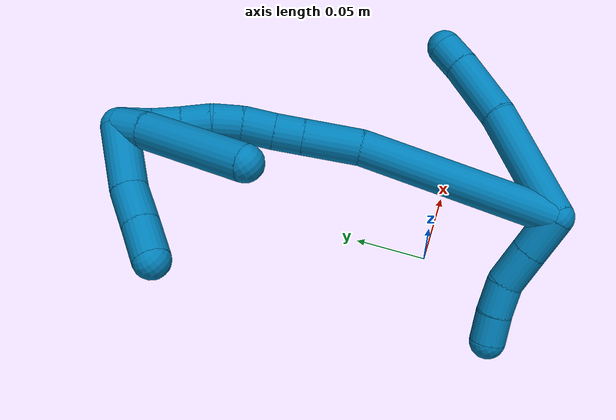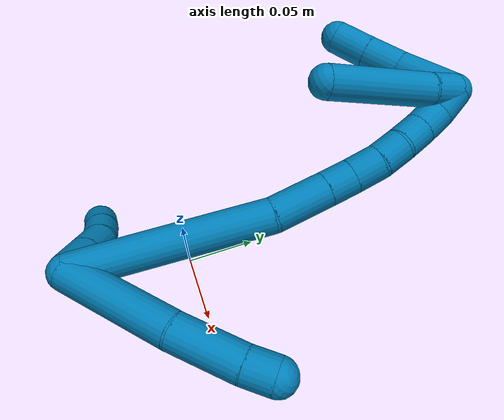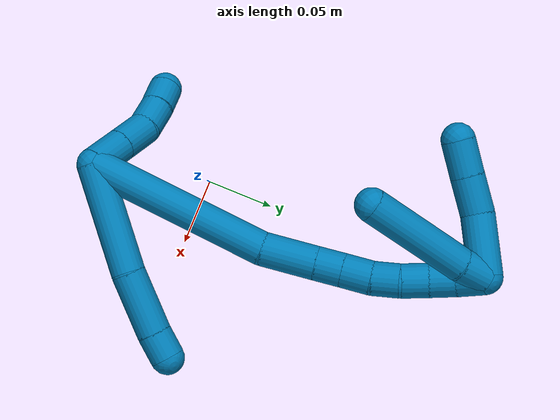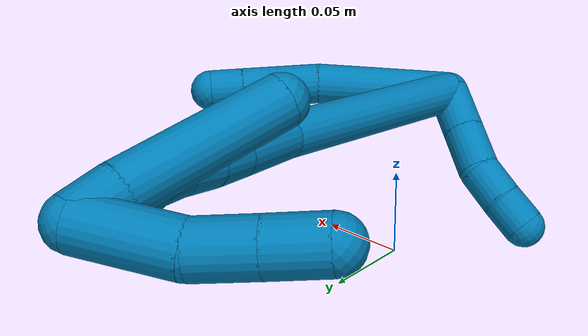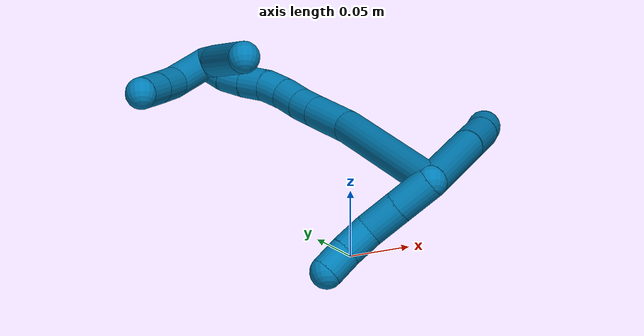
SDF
<sdf version="1.7">
 <world name="default">
  <model name="photoneo_s_sensor">
   <static>1</static>
   <pose>0 0 2 1.57079 1.57079 3.14159</pose>
   <link name="link">
    <inertial><mass>0.1</mass></inertial>
    <sensor name="sensor" type="depth">
     <update_rate>30</update_rate>
     <camera>
      <horizontal_fov>1.22</horizontal_fov>
      <image><width>1920</width><height>1200</height><format>B8G8R8</format></image>
      <clip><near>0.1</near><far>4</far></clip>
      <depth_camera><output>points</output></depth_camera>
     </camera>
     <plugin name="camera_plugin" filename="libgazebo_ros_depth_camera.so">
      <baseline>0.2</baseline>
      <alwaysOn>1</alwaysOn>
      <updateRate>0.0</updateRate>
      <cameraName>camera_ir</cameraName>
      <imageTopicName>/camera/color/image_raw</imageTopicName>
      <cameraInfoTopicName>/camera/color/camera_info</cameraInfoTopicName>
      <depthImageTopicName>/camera/depth/image_raw</depthImageTopicName>
      <depthImageCameraInfoTopicName>/camera/depth/camera_info</depthImageCameraInfoTopicName>
      <pointCloudTopicName>/camera/depth/points</pointCloudTopicName>
      <frameName>fr_optical</frameName>
      <pointCloudCutoff>0.1</pointCloudCutoff>
      <pointCloudCutoffMax>2.0</pointCloudCutoffMax>
      <distortionK1>0</distortionK1>
      <distortionK2>0</distortionK2>
      <distortionK3>0</distortionK3>
      <distortionT1>0</distortionT1>
      <distortionT2>0</distortionT2>
      <CxPrime>0</CxPrime>
      <Cx>0</Cx>
      <Cy>0</Cy>
      <focalLength>0</focalLength>
      <hackBaseline>0</hackBaseline>
     </plugin>
    </sensor>
   </link>
  </model>
  <model name="bin">
   <static>1</static>
   <link name="bottom">
    <collision name="collision-bottom">
     <pose>0 0 -0.01 0 -0 0</pose>
     <geometry><box><size>0.8 0.6 0.02</size></box></geometry>
     <surface>
      <friction><ode><mu>100</mu><mu2>100</mu2></ode></friction>
      <contact><collide_bitmask>65535</collide_bitmask></contact>
     </surface>
    </collision>
   </link>
   <link name="west_wall">
    <collision name="collision-west_wall">
     <pose>-0.41 0 0.1 0 -0 0</pose>
     <geometry><box><size>0.02 0.6 0.2</size></box></geometry>
     <surface>
      <friction><ode><mu>100</mu><mu2>100</mu2></ode></friction>
      <contact><collide_bitmask>65535</collide_bitmask></contact>
     </surface>
    </collision>
   </link>
   <link name="east_wall">
    <collision name="collision-east_wall">
     <pose>0.41 0 0.1 0 -0 0</pose>
     <geometry><box><size>0.02 0.6 0.2</size></box></geometry>
     <surface>
      <friction><ode><mu>100</mu><mu2>100</mu2></ode></friction>
      <contact><collide_bitmask>65535</collide_bitmask></contact>
     </surface>
    </collision>
   </link>
   <link name="south_wall">
    <collision name="collision-south_wall">
     <pose>0 -0.31 0.1 0 -0 0</pose>
     <geometry><box><size>0.8 0.02 0.2</size></box></geometry>
     <surface>
      <friction><ode><mu>100</mu><mu2>100</mu2></ode></friction>
      <contact><collide_bitmask>65535</collide_bitmask></contact>
     </surface>
    </collision>
   </link>
   <link name="north_wall">
    <collision name="collision-north_wall">
     <pose>0 0.31 0.1 0 -0 0</pose>
     <geometry><box><size>0.8 0.02 0.2</size></box></geometry>
     <surface>
      <friction><ode><mu>100</mu><mu2>100</mu2></ode></friction>
      <contact><collide_bitmask>65535</collide_bitmask></contact>
     </surface>
    </collision>
   </link>
  </model>
  <model name="9">
   <static>0</static>
   <link name="9">
    <collision name="collision-cylinder-e_1_2_8">
     <pose>0.031785 0.004801 0.026002 -0.182579 0.876914 -0.085797</pose>
     <geometry><cylinder><radius>0.0125</radius><length>0.082692</length></cylinder></geometry>
     <surface>
      <friction><ode><mu>1.16</mu><mu2>1.16</mu2><slip1>0</slip1><slip2>0</slip2></ode></friction>
      <contact><ode><kp>1e+06</kp><kd>1</kd><max_vel>0</max_vel><min_depth>0.001</min_depth></ode></contact>
     </surface>
    </collision>
    <visual name="visual-cylinder-e_1_2_8">
     <pose>0.031785 0.004801 0.026002 -0.182579 0.876914 -0.085797</pose>
     <geometry><cylinder><radius>0.0125</radius><length>0.082692</length></cylinder></geometry>
     <material><ambient>0 0.490196 0.709804 1</ambient></material>
    </visual>
    <collision name="collision-cylinder-e_2_8_9">
     <pose>0.082028 0.015281 0.065546 -0.397094 0.898762 -0.193466</pose>
     <geometry><cylinder><radius>0.0125</radius><length>0.047172</length></cylinder></geometry>
     <surface>
      <friction><ode><mu>1.16</mu><mu2>1.16</mu2><slip1>0</slip1><slip2>0</slip2></ode></friction>
      <contact><ode><kp>1e+06</kp><kd>1</kd><max_vel>0</max_vel><min_depth>0.001</min_depth></ode></contact>
     </surface>
    </collision>
    <visual name="visual-cylinder-e_2_8_9">
     <pose>0.082028 0.015281 0.065546 -0.397094 0.898762 -0.193466</pose>
     <geometry><cylinder><radius>0.0125</radius><length>0.047172</length></cylinder></geometry>
     <material><ambient>0 0.490196 0.709804 1</ambient></material>
    </visual>
    <collision name="collision-cylinder-e_3_9_6">
     <pose>0.107824 0.024051 0.085249 -0.464935 0.816619 -0.204133</pose>
     <geometry><cylinder><radius>0.0125</radius><length>0.020136</length></cylinder></geometry>
     <surface>
      <friction><ode><mu>1.16</mu><mu2>1.16</mu2><slip1>0</slip1><slip2>0</slip2></ode></friction>
      <contact><ode><kp>1e+06</kp><kd>1</kd><max_vel>0</max_vel><min_depth>0.001</min_depth></ode></contact>
     </surface>
    </collision>
    <visual name="visual-cylinder-e_3_9_6">
     <pose>0.107824 0.024051 0.085249 -0.464935 0.816619 -0.204133</pose>
     <geometry><cylinder><radius>0.0125</radius><length>0.020136</length></cylinder></geometry>
     <material><ambient>0 0.490196 0.709804 1</ambient></material>
    </visual>
    <collision name="collision-cylinder-e_1_2_10">
     <pose>-0.002984 0.012877 -0.006392 -2.03156 -0.204636 0.328219</pose>
     <geometry><cylinder><radius>0.0125</radius><length>0.029366</length></cylinder></geometry>
     <surface>
      <friction><ode><mu>1.16</mu><mu2>1.16</mu2><slip1>0</slip1><slip2>0</slip2></ode></friction>
      <contact><ode><kp>1e+06</kp><kd>1</kd><max_vel>0</max_vel><min_depth>0.001</min_depth></ode></contact>
     </surface>
    </collision>
    <visual name="visual-cylinder-e_1_2_10">
     <pose>-0.002984 0.012877 -0.006392 -2.03156 -0.204636 0.328219</pose>
     <geometry><cylinder><radius>0.0125</radius><length>0.029366</length></cylinder></geometry>
     <material><ambient>0 0.490196 0.709804 1</ambient></material>
    </visual>
    <collision name="collision-cylinder-e_2_10_11">
     <pose>-0.008758 0.037802 -0.018825 -2.03555 -0.204197 0.328961</pose>
     <geometry><cylinder><radius>0.0125</radius><length>0.027525</length></cylinder></geometry>
     <surface>
      <friction><ode><mu>1.16</mu><mu2>1.16</mu2><slip1>0</slip1><slip2>0</slip2></ode></friction>
      <contact><ode><kp>1e+06</kp><kd>1</kd><max_vel>0</max_vel><min_depth>0.001</min_depth></ode></contact>
     </surface>
    </collision>
    <visual name="visual-cylinder-e_2_10_11">
     <pose>-0.008758 0.037802 -0.018825 -2.03555 -0.204197 0.328961</pose>
     <geometry><cylinder><radius>0.0125</radius><length>0.027525</length></cylinder></geometry>
     <material><ambient>0 0.490196 0.709804 1</ambient></material>
    </visual>
    <collision name="collision-cylinder-e_3_11_12">
     <pose>-0.015845 0.057714 -0.031806 -2.29392 -0.388723 0.822789</pose>
     <geometry><cylinder><radius>0.0125</radius><length>0.02267</length></cylinder></geometry>
     <surface>
      <friction><ode><mu>1.16</mu><mu2>1.16</mu2><slip1>0</slip1><slip2>0</slip2></ode></friction>
      <contact><ode><kp>1e+06</kp><kd>1</kd><max_vel>0</max_vel><min_depth>0.001</min_depth></ode></contact>
     </surface>
    </collision>
    <visual name="visual-cylinder-e_3_11_12">
     <pose>-0.015845 0.057714 -0.031806 -2.29392 -0.388723 0.822789</pose>
     <geometry><cylinder><radius>0.0125</radius><length>0.02267</length></cylinder></geometry>
     <material><ambient>0 0.490196 0.709804 1</ambient></material>
    </visual>
    <collision name="collision-cylinder-e_4_12_5">
     <pose>-0.024001 0.071932 -0.045759 -2.40533 -0.387315 0.940767</pose>
     <geometry><cylinder><radius>0.0125</radius><length>0.020439</length></cylinder></geometry>
     <surface>
      <friction><ode><mu>1.16</mu><mu2>1.16</mu2><slip1>0</slip1><slip2>0</slip2></ode></friction>
      <contact><ode><kp>1e+06</kp><kd>1</kd><max_vel>0</max_vel><min_depth>0.001</min_depth></ode></contact>
     </surface>
    </collision>
    <visual name="visual-cylinder-e_4_12_5">
     <pose>-0.024001 0.071932 -0.045759 -2.40533 -0.387315 0.940767</pose>
     <geometry><cylinder><radius>0.0125</radius><length>0.020439</length></cylinder></geometry>
     <material><ambient>0 0.490196 0.709804 1</ambient></material>
    </visual>
    <collision name="collision-cylinder-e_1_2_13">
     <pose>0.018282 0.047949 0.045072 -0.81632 0.270981 -0.117771</pose>
     <geometry><cylinder><radius>0.0125</radius><length>0.136599</length></cylinder></geometry>
     <surface>
      <friction><ode><mu>1.16</mu><mu2>1.16</mu2><slip1>0</slip1><slip2>0</slip2></ode></friction>
      <contact><ode><kp>1e+06</kp><kd>1</kd><max_vel>0</max_vel><min_depth>0.001</min_depth></ode></contact>
     </surface>
    </collision>
    <visual name="visual-cylinder-e_1_2_13">
     <pose>0.018282 0.047949 0.045072 -0.81632 0.270981 -0.117771</pose>
     <geometry><cylinder><radius>0.0125</radius><length>0.136599</length></cylinder></geometry>
     <material><ambient>0 0.490196 0.709804 1</ambient></material>
    </visual>
    <collision name="collision-cylinder-e_2_13_14">
     <pose>0.038218 0.111379 0.102671 -0.890449 0.082865 -0.039559</pose>
     <geometry><cylinder><radius>0.0125</radius><length>0.039967</length></cylinder></geometry>
     <surface>
      <friction><ode><mu>1.16</mu><mu2>1.16</mu2><slip1>0</slip1><slip2>0</slip2></ode></friction>
      <contact><ode><kp>1e+06</kp><kd>1</kd><max_vel>0</max_vel><min_depth>0.001</min_depth></ode></contact>
     </surface>
    </collision>
    <visual name="visual-cylinder-e_2_13_14">
     <pose>0.038218 0.111379 0.102671 -0.890449 0.082865 -0.039559</pose>
     <geometry><cylinder><radius>0.0125</radius><length>0.039967</length></cylinder></geometry>
     <material><ambient>0 0.490196 0.709804 1</ambient></material>
    </visual>
    <collision name="collision-cylinder-e_3_14_15">
     <pose>0.040579 0.134588 0.121588 -0.879915 0.070348 -0.033126</pose>
     <geometry><cylinder><radius>0.0125</radius><length>0.020103</length></cylinder></geometry>
     <surface>
      <friction><ode><mu>1.16</mu><mu2>1.16</mu2><slip1>0</slip1><slip2>0</slip2></ode></friction>
      <contact><ode><kp>1e+06</kp><kd>1</kd><max_vel>0</max_vel><min_depth>0.001</min_depth></ode></contact>
     </surface>
    </collision>
    <visual name="visual-cylinder-e_3_14_15">
     <pose>0.040579 0.134588 0.121588 -0.879915 0.070348 -0.033126</pose>
     <geometry><cylinder><radius>0.0125</radius><length>0.020103</length></cylinder></geometry>
     <material><ambient>0 0.490196 0.709804 1</ambient></material>
    </visual>
    <collision name="collision-cylinder-e_4_15_16">
     <pose>0.041735 0.150254 0.13549 -0.812972 0.041101 -0.017694</pose>
     <geometry><cylinder><radius>0.0125</radius><length>0.021878</length></cylinder></geometry>
     <surface>
      <friction><ode><mu>1.16</mu><mu2>1.16</mu2><slip1>0</slip1><slip2>0</slip2></ode></friction>
      <contact><ode><kp>1e+06</kp><kd>1</kd><max_vel>0</max_vel><min_depth>0.001</min_depth></ode></contact>
     </surface>
    </collision>
    <visual name="visual-cylinder-e_4_15_16">
     <pose>0.041735 0.150254 0.13549 -0.812972 0.041101 -0.017694</pose>
     <geometry><cylinder><radius>0.0125</radius><length>0.021878</length></cylinder></geometry>
     <material><ambient>0 0.490196 0.709804 1</ambient></material>
    </visual>
    <collision name="collision-cylinder-e_5_16_17">
     <pose>0.04115 0.166037 0.149177 -0.903916 -0.103309 0.050188</pose>
     <geometry><cylinder><radius>0.0125</radius><length>0.020072</length></cylinder></geometry>
     <surface>
      <friction><ode><mu>1.16</mu><mu2>1.16</mu2><slip1>0</slip1><slip2>0</slip2></ode></friction>
      <contact><ode><kp>1e+06</kp><kd>1</kd><max_vel>0</max_vel><min_depth>0.001</min_depth></ode></contact>
     </surface>
    </collision>
    <visual name="visual-cylinder-e_5_16_17">
     <pose>0.04115 0.166037 0.149177 -0.903916 -0.103309 0.050188</pose>
     <geometry><cylinder><radius>0.0125</radius><length>0.020072</length></cylinder></geometry>
     <material><ambient>0 0.490196 0.709804 1</ambient></material>
    </visual>
    <collision name="collision-cylinder-e_6_17_18">
     <pose>0.038871 0.182817 0.159915 -1.09875 -0.123332 0.075569</pose>
     <geometry><cylinder><radius>0.0125</radius><length>0.020221</length></cylinder></geometry>
     <surface>
      <friction><ode><mu>1.16</mu><mu2>1.16</mu2><slip1>0</slip1><slip2>0</slip2></ode></friction>
      <contact><ode><kp>1e+06</kp><kd>1</kd><max_vel>0</max_vel><min_depth>0.001</min_depth></ode></contact>
     </surface>
    </collision>
    <visual name="visual-cylinder-e_6_17_18">
     <pose>0.038871 0.182817 0.159915 -1.09875 -0.123332 0.075569</pose>
     <geometry><cylinder><radius>0.0125</radius><length>0.020221</length></cylinder></geometry>
     <material><ambient>0 0.490196 0.709804 1</ambient></material>
    </visual>
    <collision name="collision-cylinder-e_7_18_19">
     <pose>0.035752 0.200271 0.169702 -1.0206 -0.185522 0.104051</pose>
     <geometry><cylinder><radius>0.0125</radius><length>0.020334</length></cylinder></geometry>
     <surface>
      <friction><ode><mu>1.16</mu><mu2>1.16</mu2><slip1>0</slip1><slip2>0</slip2></ode></friction>
      <contact><ode><kp>1e+06</kp><kd>1</kd><max_vel>0</max_vel><min_depth>0.001</min_depth></ode></contact>
     </surface>
    </collision>
    <visual name="visual-cylinder-e_7_18_19">
     <pose>0.035752 0.200271 0.169702 -1.0206 -0.185522 0.104051</pose>
     <geometry><cylinder><radius>0.0125</radius><length>0.020334</length></cylinder></geometry>
     <material><ambient>0 0.490196 0.709804 1</ambient></material>
    </visual>
    <collision name="collision-cylinder-e_8_19_1">
     <pose>0.030305 0.215736 0.181812 -0.78986 -0.350045 0.147151</pose>
     <geometry><cylinder><radius>0.0125</radius><length>0.020825</length></cylinder></geometry>
     <surface>
      <friction><ode><mu>1.16</mu><mu2>1.16</mu2><slip1>0</slip1><slip2>0</slip2></ode></friction>
      <contact><ode><kp>1e+06</kp><kd>1</kd><max_vel>0</max_vel><min_depth>0.001</min_depth></ode></contact>
     </surface>
    </collision>
    <visual name="visual-cylinder-e_8_19_1">
     <pose>0.030305 0.215736 0.181812 -0.78986 -0.350045 0.147151</pose>
     <geometry><cylinder><radius>0.0125</radius><length>0.020825</length></cylinder></geometry>
     <material><ambient>0 0.490196 0.709804 1</ambient></material>
    </visual>
    <collision name="collision-cylinder-e_1_1_20">
     <pose>0.008925 0.224938 0.174848 -2.98022 -0.903509 2.81133</pose>
     <geometry><cylinder><radius>0.0125</radius><length>0.045344</length></cylinder></geometry>
     <surface>
      <friction><ode><mu>1.16</mu><mu2>1.16</mu2><slip1>0</slip1><slip2>0</slip2></ode></friction>
      <contact><ode><kp>1e+06</kp><kd>1</kd><max_vel>0</max_vel><min_depth>0.001</min_depth></ode></contact>
     </surface>
    </collision>
    <visual name="visual-cylinder-e_1_1_20">
     <pose>0.008925 0.224938 0.174848 -2.98022 -0.903509 2.81133</pose>
     <geometry><cylinder><radius>0.0125</radius><length>0.045344</length></cylinder></geometry>
     <material><ambient>0 0.490196 0.709804 1</ambient></material>
    </visual>
    <collision name="collision-cylinder-e_2_20_21">
     <pose>-0.020804 0.225279 0.153752 2.8836 -1.00944 -2.68034</pose>
     <geometry><cylinder><radius>0.0125</radius><length>0.028163</length></cylinder></geometry>
     <surface>
      <friction><ode><mu>1.16</mu><mu2>1.16</mu2><slip1>0</slip1><slip2>0</slip2></ode></friction>
      <contact><ode><kp>1e+06</kp><kd>1</kd><max_vel>0</max_vel><min_depth>0.001</min_depth></ode></contact>
     </surface>
    </collision>
    <visual name="visual-cylinder-e_2_20_21">
     <pose>-0.020804 0.225279 0.153752 2.8836 -1.00944 -2.68034</pose>
     <geometry><cylinder><radius>0.0125</radius><length>0.028163</length></cylinder></geometry>
     <material><ambient>0 0.490196 0.709804 1</ambient></material>
    </visual>
    <collision name="collision-cylinder-e_3_21_4">
     <pose>-0.044071 0.221612 0.139898 2.88191 -1.02865 -2.68739</pose>
     <geometry><cylinder><radius>0.0125</radius><length>0.026493</length></cylinder></geometry>
     <surface>
      <friction><ode><mu>1.16</mu><mu2>1.16</mu2><slip1>0</slip1><slip2>0</slip2></ode></friction>
      <contact><ode><kp>1e+06</kp><kd>1</kd><max_vel>0</max_vel><min_depth>0.001</min_depth></ode></contact>
     </surface>
    </collision>
    <visual name="visual-cylinder-e_3_21_4">
     <pose>-0.044071 0.221612 0.139898 2.88191 -1.02865 -2.68739</pose>
     <geometry><cylinder><radius>0.0125</radius><length>0.026493</length></cylinder></geometry>
     <material><ambient>0 0.490196 0.709804 1</ambient></material>
    </visual>
    <collision name="collision-cylinder-e_1_1_22">
     <pose>0.022216 0.213741 0.184786 1.98307 -0.433575 -0.649578</pose>
     <geometry><cylinder><radius>0.0125</radius><length>0.02151</length></cylinder></geometry>
     <surface>
      <friction><ode><mu>1.16</mu><mu2>1.16</mu2><slip1>0</slip1><slip2>0</slip2></ode></friction>
      <contact><ode><kp>1e+06</kp><kd>1</kd><max_vel>0</max_vel><min_depth>0.001</min_depth></ode></contact>
     </surface>
    </collision>
    <visual name="visual-cylinder-e_1_1_22">
     <pose>0.022216 0.213741 0.184786 1.98307 -0.433575 -0.649578</pose>
     <geometry><cylinder><radius>0.0125</radius><length>0.02151</length></cylinder></geometry>
     <material><ambient>0 0.490196 0.709804 1</ambient></material>
    </visual>
    <collision name="collision-cylinder-e_2_22_3">
     <pose>-0.001875 0.175116 0.164263 2.08104 -0.52215 -0.855168</pose>
     <geometry><cylinder><radius>0.0125</radius><length>0.07849</length></cylinder></geometry>
     <surface>
      <friction><ode><mu>1.16</mu><mu2>1.16</mu2><slip1>0</slip1><slip2>0</slip2></ode></friction>
      <contact><ode><kp>1e+06</kp><kd>1</kd><max_vel>0</max_vel><min_depth>0.001</min_depth></ode></contact>
     </surface>
    </collision>
    <visual name="visual-cylinder-e_2_22_3">
     <pose>-0.001875 0.175116 0.164263 2.08104 -0.52215 -0.855168</pose>
     <geometry><cylinder><radius>0.0125</radius><length>0.07849</length></cylinder></geometry>
     <material><ambient>0 0.490196 0.709804 1</ambient></material>
    </visual>
    <collision name="collision-sphere-3">
     <pose>-0.021449 0.145433 0.14765 0 -0 0</pose>
     <geometry><sphere><radius>0.0125</radius></sphere></geometry>
     <surface>
      <friction><ode><mu>1.16</mu><mu2>1.16</mu2><slip1>0</slip1><slip2>0</slip2></ode></friction>
      <contact><ode><kp>1e+06</kp><kd>1</kd><max_vel>0</max_vel><min_depth>0.001</min_depth></ode></contact>
     </surface>
    </collision>
    <visual name="visual-sphere-3">
     <pose>-0.021449 0.145433 0.14765 0 -0 0</pose>
     <geometry><sphere><radius>0.0125</radius></sphere></geometry>
     <material><ambient>0 0.490196 0.709804 1</ambient></material>
    </visual>
    <collision name="collision-sphere-22">
     <pose>0.017698 0.204799 0.180876 0 -0 0</pose>
     <geometry><sphere><radius>0.0125</radius></sphere></geometry>
     <surface>
      <friction><ode><mu>1.16</mu><mu2>1.16</mu2><slip1>0</slip1><slip2>0</slip2></ode></friction>
      <contact><ode><kp>1e+06</kp><kd>1</kd><max_vel>0</max_vel><min_depth>0.001</min_depth></ode></contact>
     </surface>
    </collision>
    <visual name="visual-sphere-22">
     <pose>0.017698 0.204799 0.180876 0 -0 0</pose>
     <geometry><sphere><radius>0.0125</radius></sphere></geometry>
     <material><ambient>0 0.490196 0.709804 1</ambient></material>
    </visual>
    <collision name="collision-sphere-4">
     <pose>-0.055418 0.219857 0.133293 0 -0 0</pose>
     <geometry><sphere><radius>0.0125</radius></sphere></geometry>
     <surface>
      <friction><ode><mu>1.16</mu><mu2>1.16</mu2><slip1>0</slip1><slip2>0</slip2></ode></friction>
      <contact><ode><kp>1e+06</kp><kd>1</kd><max_vel>0</max_vel><min_depth>0.001</min_depth></ode></contact>
     </surface>
    </collision>
    <visual name="visual-sphere-4">
     <pose>-0.055418 0.219857 0.133293 0 -0 0</pose>
     <geometry><sphere><radius>0.0125</radius></sphere></geometry>
     <material><ambient>0 0.490196 0.709804 1</ambient></material>
    </visual>
    <collision name="collision-sphere-21">
     <pose>-0.032724 0.223367 0.146504 0 -0 0</pose>
     <geometry><sphere><radius>0.0125</radius></sphere></geometry>
     <surface>
      <friction><ode><mu>1.16</mu><mu2>1.16</mu2><slip1>0</slip1><slip2>0</slip2></ode></friction>
      <contact><ode><kp>1e+06</kp><kd>1</kd><max_vel>0</max_vel><min_depth>0.001</min_depth></ode></contact>
     </surface>
    </collision>
    <visual name="visual-sphere-21">
     <pose>-0.032724 0.223367 0.146504 0 -0 0</pose>
     <geometry><sphere><radius>0.0125</radius></sphere></geometry>
     <material><ambient>0 0.490196 0.709804 1</ambient></material>
    </visual>
    <collision name="collision-sphere-20">
     <pose>-0.008884 0.227192 0.161 0 -0 0</pose>
     <geometry><sphere><radius>0.0125</radius></sphere></geometry>
     <surface>
      <friction><ode><mu>1.16</mu><mu2>1.16</mu2><slip1>0</slip1><slip2>0</slip2></ode></friction>
      <contact><ode><kp>1e+06</kp><kd>1</kd><max_vel>0</max_vel><min_depth>0.001</min_depth></ode></contact>
     </surface>
    </collision>
    <visual name="visual-sphere-20">
     <pose>-0.008884 0.227192 0.161 0 -0 0</pose>
     <geometry><sphere><radius>0.0125</radius></sphere></geometry>
     <material><ambient>0 0.490196 0.709804 1</ambient></material>
    </visual>
    <collision name="collision-sphere-11">
     <pose>-0.011549 0.049849 -0.024865 0 -0 0</pose>
     <geometry><sphere><radius>0.0125</radius></sphere></geometry>
     <surface>
      <friction><ode><mu>1.16</mu><mu2>1.16</mu2><slip1>0</slip1><slip2>0</slip2></ode></friction>
      <contact><ode><kp>1e+06</kp><kd>1</kd><max_vel>0</max_vel><min_depth>0.001</min_depth></ode></contact>
     </surface>
    </collision>
    <visual name="visual-sphere-11">
     <pose>-0.011549 0.049849 -0.024865 0 -0 0</pose>
     <geometry><sphere><radius>0.0125</radius></sphere></geometry>
     <material><ambient>0 0.490196 0.709804 1</ambient></material>
    </visual>
    <collision name="collision-sphere-10">
     <pose>-0.005967 0.025755 -0.012784 0 -0 0</pose>
     <geometry><sphere><radius>0.0125</radius></sphere></geometry>
     <surface>
      <friction><ode><mu>1.16</mu><mu2>1.16</mu2><slip1>0</slip1><slip2>0</slip2></ode></friction>
      <contact><ode><kp>1e+06</kp><kd>1</kd><max_vel>0</max_vel><min_depth>0.001</min_depth></ode></contact>
     </surface>
    </collision>
    <visual name="visual-sphere-10">
     <pose>-0.005967 0.025755 -0.012784 0 -0 0</pose>
     <geometry><sphere><radius>0.0125</radius></sphere></geometry>
     <material><ambient>0 0.490196 0.709804 1</ambient></material>
    </visual>
    <collision name="collision-sphere-6">
     <pose>0.115162 0.027141 0.091411 0 -0 0</pose>
     <geometry><sphere><radius>0.0125</radius></sphere></geometry>
     <surface>
      <friction><ode><mu>1.16</mu><mu2>1.16</mu2><slip1>0</slip1><slip2>0</slip2></ode></friction>
      <contact><ode><kp>1e+06</kp><kd>1</kd><max_vel>0</max_vel><min_depth>0.001</min_depth></ode></contact>
     </surface>
    </collision>
    <visual name="visual-sphere-6">
     <pose>0.115162 0.027141 0.091411 0 -0 0</pose>
     <geometry><sphere><radius>0.0125</radius></sphere></geometry>
     <material><ambient>0 0.490196 0.709804 1</ambient></material>
    </visual>
    <collision name="collision-sphere-9">
     <pose>0.100486 0.02096 0.079088 0 -0 0</pose>
     <geometry><sphere><radius>0.0125</radius></sphere></geometry>
     <surface>
      <friction><ode><mu>1.16</mu><mu2>1.16</mu2><slip1>0</slip1><slip2>0</slip2></ode></friction>
      <contact><ode><kp>1e+06</kp><kd>1</kd><max_vel>0</max_vel><min_depth>0.001</min_depth></ode></contact>
     </surface>
    </collision>
    <visual name="visual-sphere-9">
     <pose>0.100486 0.02096 0.079088 0 -0 0</pose>
     <geometry><sphere><radius>0.0125</radius></sphere></geometry>
     <material><ambient>0 0.490196 0.709804 1</ambient></material>
    </visual>
    <collision name="collision-sphere-2">
     <geometry><sphere><radius>0.0125</radius></sphere></geometry>
     <surface>
      <friction><ode><mu>1.16</mu><mu2>1.16</mu2><slip1>0</slip1><slip2>0</slip2></ode></friction>
      <contact><ode><kp>1e+06</kp><kd>1</kd><max_vel>0</max_vel><min_depth>0.001</min_depth></ode></contact>
     </surface>
    </collision>
    <visual name="visual-sphere-2">
     <geometry><sphere><radius>0.0125</radius></sphere></geometry>
     <material><ambient>0 0.490196 0.709804 1</ambient></material>
    </visual>
    <collision name="collision-sphere-19">
     <pose>0.033876 0.208789 0.174926 0 -0 0</pose>
     <geometry><sphere><radius>0.0125</radius></sphere></geometry>
     <surface>
      <friction><ode><mu>1.16</mu><mu2>1.16</mu2><slip1>0</slip1><slip2>0</slip2></ode></friction>
      <contact><ode><kp>1e+06</kp><kd>1</kd><max_vel>0</max_vel><min_depth>0.001</min_depth></ode></contact>
     </surface>
    </collision>
    <visual name="visual-sphere-19">
     <pose>0.033876 0.208789 0.174926 0 -0 0</pose>
     <geometry><sphere><radius>0.0125</radius></sphere></geometry>
     <material><ambient>0 0.490196 0.709804 1</ambient></material>
    </visual>
    <collision name="collision-sphere-8">
     <pose>0.063571 0.009602 0.052005 0 -0 0</pose>
     <geometry><sphere><radius>0.0125</radius></sphere></geometry>
     <surface>
      <friction><ode><mu>1.16</mu><mu2>1.16</mu2><slip1>0</slip1><slip2>0</slip2></ode></friction>
      <contact><ode><kp>1e+06</kp><kd>1</kd><max_vel>0</max_vel><min_depth>0.001</min_depth></ode></contact>
     </surface>
    </collision>
    <visual name="visual-sphere-8">
     <pose>0.063571 0.009602 0.052005 0 -0 0</pose>
     <geometry><sphere><radius>0.0125</radius></sphere></geometry>
     <material><ambient>0 0.490196 0.709804 1</ambient></material>
    </visual>
    <collision name="collision-sphere-12">
     <pose>-0.020141 0.065578 -0.038747 0 -0 0</pose>
     <geometry><sphere><radius>0.0125</radius></sphere></geometry>
     <surface>
      <friction><ode><mu>1.16</mu><mu2>1.16</mu2><slip1>0</slip1><slip2>0</slip2></ode></friction>
      <contact><ode><kp>1e+06</kp><kd>1</kd><max_vel>0</max_vel><min_depth>0.001</min_depth></ode></contact>
     </surface>
    </collision>
    <visual name="visual-sphere-12">
     <pose>-0.020141 0.065578 -0.038747 0 -0 0</pose>
     <geometry><sphere><radius>0.0125</radius></sphere></geometry>
     <material><ambient>0 0.490196 0.709804 1</ambient></material>
    </visual>
    <collision name="collision-sphere-5">
     <pose>-0.027861 0.078286 -0.05277 0 -0 0</pose>
     <geometry><sphere><radius>0.0125</radius></sphere></geometry>
     <surface>
      <friction><ode><mu>1.16</mu><mu2>1.16</mu2><slip1>0</slip1><slip2>0</slip2></ode></friction>
      <contact><ode><kp>1e+06</kp><kd>1</kd><max_vel>0</max_vel><min_depth>0.001</min_depth></ode></contact>
     </surface>
    </collision>
    <visual name="visual-sphere-5">
     <pose>-0.027861 0.078286 -0.05277 0 -0 0</pose>
     <geometry><sphere><radius>0.0125</radius></sphere></geometry>
     <material><ambient>0 0.490196 0.709804 1</ambient></material>
    </visual>
    <collision name="collision-sphere-13">
     <pose>0.036564 0.095898 0.090143 0 -0 0</pose>
     <geometry><sphere><radius>0.0125</radius></sphere></geometry>
     <surface>
      <friction><ode><mu>1.16</mu><mu2>1.16</mu2><slip1>0</slip1><slip2>0</slip2></ode></friction>
      <contact><ode><kp>1e+06</kp><kd>1</kd><max_vel>0</max_vel><min_depth>0.001</min_depth></ode></contact>
     </surface>
    </collision>
    <visual name="visual-sphere-13">
     <pose>0.036564 0.095898 0.090143 0 -0 0</pose>
     <geometry><sphere><radius>0.0125</radius></sphere></geometry>
     <material><ambient>0 0.490196 0.709804 1</ambient></material>
    </visual>
    <collision name="collision-sphere-14">
     <pose>0.039872 0.12686 0.115199 0 -0 0</pose>
     <geometry><sphere><radius>0.0125</radius></sphere></geometry>
     <surface>
      <friction><ode><mu>1.16</mu><mu2>1.16</mu2><slip1>0</slip1><slip2>0</slip2></ode></friction>
      <contact><ode><kp>1e+06</kp><kd>1</kd><max_vel>0</max_vel><min_depth>0.001</min_depth></ode></contact>
     </surface>
    </collision>
    <visual name="visual-sphere-14">
     <pose>0.039872 0.12686 0.115199 0 -0 0</pose>
     <geometry><sphere><radius>0.0125</radius></sphere></geometry>
     <material><ambient>0 0.490196 0.709804 1</ambient></material>
    </visual>
    <collision name="collision-sphere-15">
     <pose>0.041286 0.142315 0.127978 0 -0 0</pose>
     <geometry><sphere><radius>0.0125</radius></sphere></geometry>
     <surface>
      <friction><ode><mu>1.16</mu><mu2>1.16</mu2><slip1>0</slip1><slip2>0</slip2></ode></friction>
      <contact><ode><kp>1e+06</kp><kd>1</kd><max_vel>0</max_vel><min_depth>0.001</min_depth></ode></contact>
     </surface>
    </collision>
    <visual name="visual-sphere-15">
     <pose>0.041286 0.142315 0.127978 0 -0 0</pose>
     <geometry><sphere><radius>0.0125</radius></sphere></geometry>
     <material><ambient>0 0.490196 0.709804 1</ambient></material>
    </visual>
    <collision name="collision-sphere-16">
     <pose>0.042184 0.158193 0.143003 0 -0 0</pose>
     <geometry><sphere><radius>0.0125</radius></sphere></geometry>
     <surface>
      <friction><ode><mu>1.16</mu><mu2>1.16</mu2><slip1>0</slip1><slip2>0</slip2></ode></friction>
      <contact><ode><kp>1e+06</kp><kd>1</kd><max_vel>0</max_vel><min_depth>0.001</min_depth></ode></contact>
     </surface>
    </collision>
    <visual name="visual-sphere-16">
     <pose>0.042184 0.158193 0.143003 0 -0 0</pose>
     <geometry><sphere><radius>0.0125</radius></sphere></geometry>
     <material><ambient>0 0.490196 0.709804 1</ambient></material>
    </visual>
    <collision name="collision-sphere-17">
     <pose>0.040115 0.17388 0.155352 0 -0 0</pose>
     <geometry><sphere><radius>0.0125</radius></sphere></geometry>
     <surface>
      <friction><ode><mu>1.16</mu><mu2>1.16</mu2><slip1>0</slip1><slip2>0</slip2></ode></friction>
      <contact><ode><kp>1e+06</kp><kd>1</kd><max_vel>0</max_vel><min_depth>0.001</min_depth></ode></contact>
     </surface>
    </collision>
    <visual name="visual-sphere-17">
     <pose>0.040115 0.17388 0.155352 0 -0 0</pose>
     <geometry><sphere><radius>0.0125</radius></sphere></geometry>
     <material><ambient>0 0.490196 0.709804 1</ambient></material>
    </visual>
    <collision name="collision-sphere-18">
     <pose>0.037627 0.191753 0.164477 0 -0 0</pose>
     <geometry><sphere><radius>0.0125</radius></sphere></geometry>
     <surface>
      <friction><ode><mu>1.16</mu><mu2>1.16</mu2><slip1>0</slip1><slip2>0</slip2></ode></friction>
      <contact><ode><kp>1e+06</kp><kd>1</kd><max_vel>0</max_vel><min_depth>0.001</min_depth></ode></contact>
     </surface>
    </collision>
    <visual name="visual-sphere-18">
     <pose>0.037627 0.191753 0.164477 0 -0 0</pose>
     <geometry><sphere><radius>0.0125</radius></sphere></geometry>
     <material><ambient>0 0.490196 0.709804 1</ambient></material>
    </visual>
    <collision name="collision-sphere-1">
     <pose>0.026734 0.222683 0.188697 0 -0 0</pose>
     <geometry><sphere><radius>0.0125</radius></sphere></geometry>
     <surface>
      <friction><ode><mu>1.16</mu><mu2>1.16</mu2><slip1>0</slip1><slip2>0</slip2></ode></friction>
      <contact><ode><kp>1e+06</kp><kd>1</kd><max_vel>0</max_vel><min_depth>0.001</min_depth></ode></contact>
     </surface>
    </collision>
    <visual name="visual-sphere-1">
     <pose>0.026734 0.222683 0.188697 0 -0 0</pose>
     <geometry><sphere><radius>0.0125</radius></sphere></geometry>
     <material><ambient>0 0.490196 0.709804 1</ambient></material>
    </visual>
    <inertial>
     <pose>0.020262 0.105528 0.08875 0 -0 0</pose>
     <mass>0.75</mass>
     <inertia>
      <ixx>0.000235</ixx>
      <ixy>0</ixy>
      <ixz>0</ixz>
      <iyy>0.000203</iyy>
      <iyz>0</iyz>
      <izz>-0.000206</izz>
     </inertia>
    </inertial>
   </link>
   <pose>0.020808 -0.078956 0.073945 -0.539132 0.487754 0.267391</pose>
  </model>
 </world>
</sdf>
